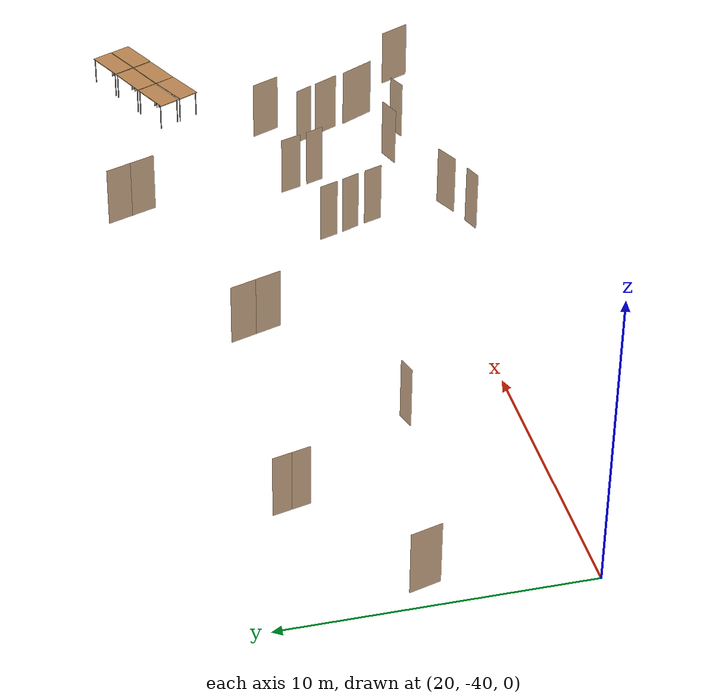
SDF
<sdf version="1.7">
 <world name="world">
  <model name="OpenRobotics/Table_3">
   <static>1</static>
   <link name="link">
    <collision name="surface">
     <pose>0 0 1 0 -0 0</pose>
     <geometry><box><size>1.5 0.8 0.03</size></box></geometry>
     <surface><friction><ode><mu>0.6</mu><mu2>0.6</mu2></ode></friction></surface>
    </collision>
    <visual name="visual1">
     <pose>0 0 1 0 -0 0</pose>
     <geometry><box><size>1.5 0.8 0.03</size></box></geometry>
     <material>
      <script><uri>file://media/materials/scripts/gazebo.material</uri><name>Gazebo/Wood</name></script>
     </material>
    </visual>
    <collision name="front_left_leg_c">
     <pose>0.68 0.38 0.5 0 -0 0</pose>
     <geometry><cylinder><radius>0.02</radius><length>1</length></cylinder></geometry>
    </collision>
    <visual name="front_left_leg">
     <pose>0.68 0.38 0.5 0 -0 0</pose>
     <geometry><cylinder><radius>0.02</radius><length>1</length></cylinder></geometry>
     <material>
      <script><uri>file://media/materials/scripts/gazebo.material</uri><name>Gazebo/Grey</name></script>
     </material>
    </visual>
    <collision name="front_right_leg_c">
     <pose>0.68 -0.38 0.5 0 -0 0</pose>
     <geometry><cylinder><radius>0.02</radius><length>1</length></cylinder></geometry>
    </collision>
    <visual name="front_right_leg">
     <pose>0.68 -0.38 0.5 0 -0 0</pose>
     <geometry><cylinder><radius>0.02</radius><length>1</length></cylinder></geometry>
     <material>
      <script><uri>file://media/materials/scripts/gazebo.material</uri><name>Gazebo/Grey</name></script>
     </material>
    </visual>
    <collision name="back_right_leg_c">
     <pose>-0.68 -0.38 0.5 0 -0 0</pose>
     <geometry><cylinder><radius>0.02</radius><length>1</length></cylinder></geometry>
    </collision>
    <visual name="back_right_leg">
     <pose>-0.68 -0.38 0.5 0 -0 0</pose>
     <geometry><cylinder><radius>0.02</radius><length>1</length></cylinder></geometry>
     <material>
      <script><uri>file://media/materials/scripts/gazebo.material</uri><name>Gazebo/Grey</name></script>
     </material>
    </visual>
    <collision name="back_left_leg_c">
     <pose>-0.68 0.38 0.5 0 -0 0</pose>
     <geometry><cylinder><radius>0.02</radius><length>1</length></cylinder></geometry>
    </collision>
    <visual name="back_left_leg">
     <pose>-0.68 0.38 0.5 0 -0 0</pose>
     <geometry><cylinder><radius>0.02</radius><length>1</length></cylinder></geometry>
     <material>
      <script><uri>file://media/materials/scripts/gazebo.material</uri><name>Gazebo/Grey</name></script>
     </material>
    </visual>
   </link>
   <pose>49.1187 -32.1514 0 0 -0 0.4303</pose>
  </model>
  <model name="OpenRobotics/Table_4">
   <static>1</static>
   <link name="link">
    <collision name="surface">
     <pose>0 0 1 0 -0 0</pose>
     <geometry><box><size>1.5 0.8 0.03</size></box></geometry>
     <surface><friction><ode><mu>0.6</mu><mu2>0.6</mu2></ode></friction></surface>
    </collision>
    <visual name="visual1">
     <pose>0 0 1 0 -0 0</pose>
     <geometry><box><size>1.5 0.8 0.03</size></box></geometry>
     <material>
      <script><uri>file://media/materials/scripts/gazebo.material</uri><name>Gazebo/Wood</name></script>
     </material>
    </visual>
    <collision name="front_left_leg_c">
     <pose>0.68 0.38 0.5 0 -0 0</pose>
     <geometry><cylinder><radius>0.02</radius><length>1</length></cylinder></geometry>
    </collision>
    <visual name="front_left_leg">
     <pose>0.68 0.38 0.5 0 -0 0</pose>
     <geometry><cylinder><radius>0.02</radius><length>1</length></cylinder></geometry>
     <material>
      <script><uri>file://media/materials/scripts/gazebo.material</uri><name>Gazebo/Grey</name></script>
     </material>
    </visual>
    <collision name="front_right_leg_c">
     <pose>0.68 -0.38 0.5 0 -0 0</pose>
     <geometry><cylinder><radius>0.02</radius><length>1</length></cylinder></geometry>
    </collision>
    <visual name="front_right_leg">
     <pose>0.68 -0.38 0.5 0 -0 0</pose>
     <geometry><cylinder><radius>0.02</radius><length>1</length></cylinder></geometry>
     <material>
      <script><uri>file://media/materials/scripts/gazebo.material</uri><name>Gazebo/Grey</name></script>
     </material>
    </visual>
    <collision name="back_right_leg_c">
     <pose>-0.68 -0.38 0.5 0 -0 0</pose>
     <geometry><cylinder><radius>0.02</radius><length>1</length></cylinder></geometry>
    </collision>
    <visual name="back_right_leg">
     <pose>-0.68 -0.38 0.5 0 -0 0</pose>
     <geometry><cylinder><radius>0.02</radius><length>1</length></cylinder></geometry>
     <material>
      <script><uri>file://media/materials/scripts/gazebo.material</uri><name>Gazebo/Grey</name></script>
     </material>
    </visual>
    <collision name="back_left_leg_c">
     <pose>-0.68 0.38 0.5 0 -0 0</pose>
     <geometry><cylinder><radius>0.02</radius><length>1</length></cylinder></geometry>
    </collision>
    <visual name="back_left_leg">
     <pose>-0.68 0.38 0.5 0 -0 0</pose>
     <geometry><cylinder><radius>0.02</radius><length>1</length></cylinder></geometry>
     <material>
      <script><uri>file://media/materials/scripts/gazebo.material</uri><name>Gazebo/Grey</name></script>
     </material>
    </visual>
   </link>
   <pose>50.5168 -31.5278 0 0 -0 0.4167</pose>
  </model>
  <model name="OpenRobotics/Table_5">
   <static>1</static>
   <link name="link">
    <collision name="surface">
     <pose>0 0 1 0 -0 0</pose>
     <geometry><box><size>1.5 0.8 0.03</size></box></geometry>
     <surface><friction><ode><mu>0.6</mu><mu2>0.6</mu2></ode></friction></surface>
    </collision>
    <visual name="visual1">
     <pose>0 0 1 0 -0 0</pose>
     <geometry><box><size>1.5 0.8 0.03</size></box></geometry>
     <material>
      <script><uri>file://media/materials/scripts/gazebo.material</uri><name>Gazebo/Wood</name></script>
     </material>
    </visual>
    <collision name="front_left_leg_c">
     <pose>0.68 0.38 0.5 0 -0 0</pose>
     <geometry><cylinder><radius>0.02</radius><length>1</length></cylinder></geometry>
    </collision>
    <visual name="front_left_leg">
     <pose>0.68 0.38 0.5 0 -0 0</pose>
     <geometry><cylinder><radius>0.02</radius><length>1</length></cylinder></geometry>
     <material>
      <script><uri>file://media/materials/scripts/gazebo.material</uri><name>Gazebo/Grey</name></script>
     </material>
    </visual>
    <collision name="front_right_leg_c">
     <pose>0.68 -0.38 0.5 0 -0 0</pose>
     <geometry><cylinder><radius>0.02</radius><length>1</length></cylinder></geometry>
    </collision>
    <visual name="front_right_leg">
     <pose>0.68 -0.38 0.5 0 -0 0</pose>
     <geometry><cylinder><radius>0.02</radius><length>1</length></cylinder></geometry>
     <material>
      <script><uri>file://media/materials/scripts/gazebo.material</uri><name>Gazebo/Grey</name></script>
     </material>
    </visual>
    <collision name="back_right_leg_c">
     <pose>-0.68 -0.38 0.5 0 -0 0</pose>
     <geometry><cylinder><radius>0.02</radius><length>1</length></cylinder></geometry>
    </collision>
    <visual name="back_right_leg">
     <pose>-0.68 -0.38 0.5 0 -0 0</pose>
     <geometry><cylinder><radius>0.02</radius><length>1</length></cylinder></geometry>
     <material>
      <script><uri>file://media/materials/scripts/gazebo.material</uri><name>Gazebo/Grey</name></script>
     </material>
    </visual>
    <collision name="back_left_leg_c">
     <pose>-0.68 0.38 0.5 0 -0 0</pose>
     <geometry><cylinder><radius>0.02</radius><length>1</length></cylinder></geometry>
    </collision>
    <visual name="back_left_leg">
     <pose>-0.68 0.38 0.5 0 -0 0</pose>
     <geometry><cylinder><radius>0.02</radius><length>1</length></cylinder></geometry>
     <material>
      <script><uri>file://media/materials/scripts/gazebo.material</uri><name>Gazebo/Grey</name></script>
     </material>
    </visual>
   </link>
   <pose>51.9247 -30.8942 0 0 -0 0.4347</pose>
  </model>
  <model name="OpenRobotics/Table_6">
   <static>1</static>
   <link name="link">
    <collision name="surface">
     <pose>0 0 1 0 -0 0</pose>
     <geometry><box><size>1.5 0.8 0.03</size></box></geometry>
     <surface><friction><ode><mu>0.6</mu><mu2>0.6</mu2></ode></friction></surface>
    </collision>
    <visual name="visual1">
     <pose>0 0 1 0 -0 0</pose>
     <geometry><box><size>1.5 0.8 0.03</size></box></geometry>
     <material>
      <script><uri>file://media/materials/scripts/gazebo.material</uri><name>Gazebo/Wood</name></script>
     </material>
    </visual>
    <collision name="front_left_leg_c">
     <pose>0.68 0.38 0.5 0 -0 0</pose>
     <geometry><cylinder><radius>0.02</radius><length>1</length></cylinder></geometry>
    </collision>
    <visual name="front_left_leg">
     <pose>0.68 0.38 0.5 0 -0 0</pose>
     <geometry><cylinder><radius>0.02</radius><length>1</length></cylinder></geometry>
     <material>
      <script><uri>file://media/materials/scripts/gazebo.material</uri><name>Gazebo/Grey</name></script>
     </material>
    </visual>
    <collision name="front_right_leg_c">
     <pose>0.68 -0.38 0.5 0 -0 0</pose>
     <geometry><cylinder><radius>0.02</radius><length>1</length></cylinder></geometry>
    </collision>
    <visual name="front_right_leg">
     <pose>0.68 -0.38 0.5 0 -0 0</pose>
     <geometry><cylinder><radius>0.02</radius><length>1</length></cylinder></geometry>
     <material>
      <script><uri>file://media/materials/scripts/gazebo.material</uri><name>Gazebo/Grey</name></script>
     </material>
    </visual>
    <collision name="back_right_leg_c">
     <pose>-0.68 -0.38 0.5 0 -0 0</pose>
     <geometry><cylinder><radius>0.02</radius><length>1</length></cylinder></geometry>
    </collision>
    <visual name="back_right_leg">
     <pose>-0.68 -0.38 0.5 0 -0 0</pose>
     <geometry><cylinder><radius>0.02</radius><length>1</length></cylinder></geometry>
     <material>
      <script><uri>file://media/materials/scripts/gazebo.material</uri><name>Gazebo/Grey</name></script>
     </material>
    </visual>
    <collision name="back_left_leg_c">
     <pose>-0.68 0.38 0.5 0 -0 0</pose>
     <geometry><cylinder><radius>0.02</radius><length>1</length></cylinder></geometry>
    </collision>
    <visual name="back_left_leg">
     <pose>-0.68 0.38 0.5 0 -0 0</pose>
     <geometry><cylinder><radius>0.02</radius><length>1</length></cylinder></geometry>
     <material>
      <script><uri>file://media/materials/scripts/gazebo.material</uri><name>Gazebo/Grey</name></script>
     </material>
    </visual>
   </link>
   <pose>52.2667 -31.6485 0 0 -0 0.4389</pose>
  </model>
  <model name="OpenRobotics/Table_7">
   <static>1</static>
   <link name="link">
    <collision name="surface">
     <pose>0 0 1 0 -0 0</pose>
     <geometry><box><size>1.5 0.8 0.03</size></box></geometry>
     <surface><friction><ode><mu>0.6</mu><mu2>0.6</mu2></ode></friction></surface>
    </collision>
    <visual name="visual1">
     <pose>0 0 1 0 -0 0</pose>
     <geometry><box><size>1.5 0.8 0.03</size></box></geometry>
     <material>
      <script><uri>file://media/materials/scripts/gazebo.material</uri><name>Gazebo/Wood</name></script>
     </material>
    </visual>
    <collision name="front_left_leg_c">
     <pose>0.68 0.38 0.5 0 -0 0</pose>
     <geometry><cylinder><radius>0.02</radius><length>1</length></cylinder></geometry>
    </collision>
    <visual name="front_left_leg">
     <pose>0.68 0.38 0.5 0 -0 0</pose>
     <geometry><cylinder><radius>0.02</radius><length>1</length></cylinder></geometry>
     <material>
      <script><uri>file://media/materials/scripts/gazebo.material</uri><name>Gazebo/Grey</name></script>
     </material>
    </visual>
    <collision name="front_right_leg_c">
     <pose>0.68 -0.38 0.5 0 -0 0</pose>
     <geometry><cylinder><radius>0.02</radius><length>1</length></cylinder></geometry>
    </collision>
    <visual name="front_right_leg">
     <pose>0.68 -0.38 0.5 0 -0 0</pose>
     <geometry><cylinder><radius>0.02</radius><length>1</length></cylinder></geometry>
     <material>
      <script><uri>file://media/materials/scripts/gazebo.material</uri><name>Gazebo/Grey</name></script>
     </material>
    </visual>
    <collision name="back_right_leg_c">
     <pose>-0.68 -0.38 0.5 0 -0 0</pose>
     <geometry><cylinder><radius>0.02</radius><length>1</length></cylinder></geometry>
    </collision>
    <visual name="back_right_leg">
     <pose>-0.68 -0.38 0.5 0 -0 0</pose>
     <geometry><cylinder><radius>0.02</radius><length>1</length></cylinder></geometry>
     <material>
      <script><uri>file://media/materials/scripts/gazebo.material</uri><name>Gazebo/Grey</name></script>
     </material>
    </visual>
    <collision name="back_left_leg_c">
     <pose>-0.68 0.38 0.5 0 -0 0</pose>
     <geometry><cylinder><radius>0.02</radius><length>1</length></cylinder></geometry>
    </collision>
    <visual name="back_left_leg">
     <pose>-0.68 0.38 0.5 0 -0 0</pose>
     <geometry><cylinder><radius>0.02</radius><length>1</length></cylinder></geometry>
     <material>
      <script><uri>file://media/materials/scripts/gazebo.material</uri><name>Gazebo/Grey</name></script>
     </material>
    </visual>
   </link>
   <pose>50.8587 -32.2821 0 0 -0 0.4288</pose>
  </model>
  <model name="OpenRobotics/Table_8">
   <static>1</static>
   <link name="link">
    <collision name="surface">
     <pose>0 0 1 0 -0 0</pose>
     <geometry><box><size>1.5 0.8 0.03</size></box></geometry>
     <surface><friction><ode><mu>0.6</mu><mu2>0.6</mu2></ode></friction></surface>
    </collision>
    <visual name="visual1">
     <pose>0 0 1 0 -0 0</pose>
     <geometry><box><size>1.5 0.8 0.03</size></box></geometry>
     <material>
      <script><uri>file://media/materials/scripts/gazebo.material</uri><name>Gazebo/Wood</name></script>
     </material>
    </visual>
    <collision name="front_left_leg_c">
     <pose>0.68 0.38 0.5 0 -0 0</pose>
     <geometry><cylinder><radius>0.02</radius><length>1</length></cylinder></geometry>
    </collision>
    <visual name="front_left_leg">
     <pose>0.68 0.38 0.5 0 -0 0</pose>
     <geometry><cylinder><radius>0.02</radius><length>1</length></cylinder></geometry>
     <material>
      <script><uri>file://media/materials/scripts/gazebo.material</uri><name>Gazebo/Grey</name></script>
     </material>
    </visual>
    <collision name="front_right_leg_c">
     <pose>0.68 -0.38 0.5 0 -0 0</pose>
     <geometry><cylinder><radius>0.02</radius><length>1</length></cylinder></geometry>
    </collision>
    <visual name="front_right_leg">
     <pose>0.68 -0.38 0.5 0 -0 0</pose>
     <geometry><cylinder><radius>0.02</radius><length>1</length></cylinder></geometry>
     <material>
      <script><uri>file://media/materials/scripts/gazebo.material</uri><name>Gazebo/Grey</name></script>
     </material>
    </visual>
    <collision name="back_right_leg_c">
     <pose>-0.68 -0.38 0.5 0 -0 0</pose>
     <geometry><cylinder><radius>0.02</radius><length>1</length></cylinder></geometry>
    </collision>
    <visual name="back_right_leg">
     <pose>-0.68 -0.38 0.5 0 -0 0</pose>
     <geometry><cylinder><radius>0.02</radius><length>1</length></cylinder></geometry>
     <material>
      <script><uri>file://media/materials/scripts/gazebo.material</uri><name>Gazebo/Grey</name></script>
     </material>
    </visual>
    <collision name="back_left_leg_c">
     <pose>-0.68 0.38 0.5 0 -0 0</pose>
     <geometry><cylinder><radius>0.02</radius><length>1</length></cylinder></geometry>
    </collision>
    <visual name="back_left_leg">
     <pose>-0.68 0.38 0.5 0 -0 0</pose>
     <geometry><cylinder><radius>0.02</radius><length>1</length></cylinder></geometry>
     <material>
      <script><uri>file://media/materials/scripts/gazebo.material</uri><name>Gazebo/Grey</name></script>
     </material>
    </visual>
   </link>
   <pose>49.4808 -32.9359 0 0 -0 0.4547</pose>
  </model>
  <model name="D1">
   <pose>46.734 -38.1165 0 0 -0 -1.09898</pose>
   <link name="right">
    <pose>0 0 1.11 0 -0 0</pose>
    <visual name="right_visual">
     <geometry><box><size>0.995473 0.03 2.2</size></box></geometry>
     <material><ambient>0.5 0.25 0 0.6</ambient><diffuse>0.5 0.25 0 0.6</diffuse></material>
    </visual>
    <collision name="right_collision">
     <geometry><box><size>0.995473 0.03 2.2</size></box></geometry>
     <surface><contact><collide_bitmask>2</collide_bitmask></contact></surface>
    </collision>
    <inertial>
     <mass>50</mass>
     <inertia><ixx>20.1704</ixx><iyy>24.2957</iyy><izz>4.13277</izz><ixy>0</ixy><ixz>0</ixz><iyz>0</iyz></inertia>
    </inertial>
   </link>
   <joint name="right_joint" type="revolute">
    <parent>world</parent>
    <child>right</child>
    <axis>
     <xyz>0 0 1</xyz>
     <limit><lower>0</lower><upper>1.57</upper></limit>
     <dynamics><spring_reference>0</spring_reference><spring_stiffness>0</spring_stiffness></dynamics>
    </axis>
    <pose>0.502736 0 0 0 -0 0</pose>
   </joint>
   <plugin name="door_D1" filename="libdoor.so">
    <v_max_door>0.5</v_max_door>
    <a_max_door>0.3</a_max_door>
    <a_nom_door>0.15</a_nom_door>
    <dx_min_door>0.01</dx_min_door>
    <f_max_door>500.0</f_max_door>
    <door name="D1" type="SwingDoor" left_joint_name="empty_joint" right_joint_name="right_joint"/>
   </plugin>
  </model>
  <model name="D2">
   <pose>40.5795 -41.0884 0 0 0 -2.71335</pose>
   <link name="right">
    <pose>0 0 1.11 0 -0 0</pose>
    <visual name="right_visual">
     <geometry><box><size>0.922305 0.03 2.2</size></box></geometry>
     <material><ambient>0.5 0.25 0 0.6</ambient><diffuse>0.5 0.25 0 0.6</diffuse></material>
    </visual>
    <collision name="right_collision">
     <geometry><box><size>0.922305 0.03 2.2</size></box></geometry>
     <surface><contact><collide_bitmask>2</collide_bitmask></contact></surface>
    </collision>
    <inertial>
     <mass>50</mass>
     <inertia><ixx>20.1704</ixx><iyy>23.711</iyy><izz>3.54811</izz><ixy>0</ixy><ixz>0</ixz><iyz>0</iyz></inertia>
    </inertial>
   </link>
   <joint name="right_joint" type="revolute">
    <parent>world</parent>
    <child>right</child>
    <axis>
     <xyz>0 0 1</xyz>
     <limit><lower>0</lower><upper>1.57</upper></limit>
     <dynamics><spring_reference>0</spring_reference><spring_stiffness>0</spring_stiffness></dynamics>
    </axis>
    <pose>0.466153 0 0 0 -0 0</pose>
   </joint>
   <plugin name="door_D2" filename="libdoor.so">
    <v_max_door>0.5</v_max_door>
    <a_max_door>0.3</a_max_door>
    <a_nom_door>0.15</a_nom_door>
    <dx_min_door>0.01</dx_min_door>
    <f_max_door>500.0</f_max_door>
    <door name="D2" type="SwingDoor" left_joint_name="empty_joint" right_joint_name="right_joint"/>
   </plugin>
  </model>
  <model name="D3">
   <pose>44.2806 -39.9356 -0 0 0 -2.80852</pose>
   <link name="right">
    <pose>0 0 1.11 0 -0 0</pose>
    <visual name="right_visual">
     <geometry><box><size>0.838853 0.03 2.2</size></box></geometry>
     <material><ambient>0.5 0.25 0 0.6</ambient><diffuse>0.5 0.25 0 0.6</diffuse></material>
    </visual>
    <collision name="right_collision">
     <geometry><box><size>0.838853 0.03 2.2</size></box></geometry>
     <surface><contact><collide_bitmask>2</collide_bitmask></contact></surface>
    </collision>
    <inertial>
     <mass>50</mass>
     <inertia><ixx>20.1704</ixx><iyy>23.0986</iyy><izz>2.93572</izz><ixy>0</ixy><ixz>0</ixz><iyz>0</iyz></inertia>
    </inertial>
   </link>
   <joint name="right_joint" type="revolute">
    <parent>world</parent>
    <child>right</child>
    <axis>
     <xyz>0 0 1</xyz>
     <limit><lower>0</lower><upper>1.57</upper></limit>
     <dynamics><spring_reference>0</spring_reference><spring_stiffness>0</spring_stiffness></dynamics>
    </axis>
    <pose>0.424426 0 0 0 -0 0</pose>
   </joint>
   <plugin name="door_D3" filename="libdoor.so">
    <v_max_door>0.5</v_max_door>
    <a_max_door>0.3</a_max_door>
    <a_nom_door>0.15</a_nom_door>
    <dx_min_door>0.01</dx_min_door>
    <f_max_door>500.0</f_max_door>
    <door name="D3" type="SwingDoor" left_joint_name="empty_joint" right_joint_name="right_joint"/>
   </plugin>
  </model>
  <model name="D4">
   <pose>46.2677 -37.1758 -0 0 0 -1.0969</pose>
   <link name="right">
    <pose>0 0 1.11 0 -0 0</pose>
    <visual name="right_visual">
     <geometry><box><size>0.672919 0.03 2.2</size></box></geometry>
     <material><ambient>0.5 0.25 0 0.6</ambient><diffuse>0.5 0.25 0 0.6</diffuse></material>
    </visual>
    <collision name="right_collision">
     <geometry><box><size>0.672919 0.03 2.2</size></box></geometry>
     <surface><contact><collide_bitmask>2</collide_bitmask></contact></surface>
    </collision>
    <inertial>
     <mass>50</mass>
     <inertia><ixx>20.1704</ixx><iyy>22.0534</iyy><izz>1.8905</izz><ixy>0</ixy><ixz>0</ixz><iyz>0</iyz></inertia>
    </inertial>
   </link>
   <joint name="right_joint" type="revolute">
    <parent>world</parent>
    <child>right</child>
    <axis>
     <xyz>0 0 1</xyz>
     <limit><lower>0</lower><upper>1.57</upper></limit>
     <dynamics><spring_reference>0</spring_reference><spring_stiffness>0</spring_stiffness></dynamics>
    </axis>
    <pose>0.34146 0 0 0 -0 0</pose>
   </joint>
   <plugin name="door_D4" filename="libdoor.so">
    <v_max_door>0.5</v_max_door>
    <a_max_door>0.3</a_max_door>
    <a_nom_door>0.15</a_nom_door>
    <dx_min_door>0.01</dx_min_door>
    <f_max_door>500.0</f_max_door>
    <door name="D4" type="SwingDoor" left_joint_name="empty_joint" right_joint_name="right_joint"/>
   </plugin>
  </model>
  <model name="D5">
   <pose>47.1461 -35.8918 0 0 -0 -1.15391</pose>
   <link name="right">
    <pose>0 0 1.11 0 -0 0</pose>
    <visual name="right_visual">
     <geometry><box><size>1.10714 0.03 2.2</size></box></geometry>
     <material><ambient>0.5 0.25 0 0.6</ambient><diffuse>0.5 0.25 0 0.6</diffuse></material>
    </visual>
    <collision name="right_collision">
     <geometry><box><size>1.10714 0.03 2.2</size></box></geometry>
     <surface><contact><collide_bitmask>2</collide_bitmask></contact></surface>
    </collision>
    <inertial>
     <mass>50</mass>
     <inertia><ixx>20.1704</ixx><iyy>25.274</iyy><izz>5.11105</izz><ixy>0</ixy><ixz>0</ixz><iyz>0</iyz></inertia>
    </inertial>
   </link>
   <joint name="right_joint" type="revolute">
    <parent>world</parent>
    <child>right</child>
    <axis>
     <xyz>0 0 -1</xyz>
     <limit><lower>0</lower><upper>1.57</upper></limit>
     <dynamics><spring_reference>0</spring_reference><spring_stiffness>0</spring_stiffness></dynamics>
    </axis>
    <pose>0.558568 0 0 0 -0 0</pose>
   </joint>
   <plugin name="door_D5" filename="libdoor.so">
    <v_max_door>0.5</v_max_door>
    <a_max_door>0.3</a_max_door>
    <a_nom_door>0.15</a_nom_door>
    <dx_min_door>0.01</dx_min_door>
    <f_max_door>500.0</f_max_door>
    <door name="D5" type="SwingDoor" left_joint_name="empty_joint" right_joint_name="right_joint"/>
   </plugin>
  </model>
  <model name="D6">
   <pose>49.9364 -41.6614 -0 0 -0 -1.13197</pose>
   <link name="right">
    <pose>0 0 1.11 0 -0 0</pose>
    <visual name="right_visual">
     <geometry><box><size>1.18487 0.03 2.2</size></box></geometry>
     <material><ambient>0.5 0.25 0 0.6</ambient><diffuse>0.5 0.25 0 0.6</diffuse></material>
    </visual>
    <collision name="right_collision">
     <geometry><box><size>1.18487 0.03 2.2</size></box></geometry>
     <surface><contact><collide_bitmask>2</collide_bitmask></contact></surface>
    </collision>
    <inertial>
     <mass>50</mass>
     <inertia><ixx>20.1704</ixx><iyy>26.0163</iyy><izz>5.85339</izz><ixy>0</ixy><ixz>0</ixz><iyz>0</iyz></inertia>
    </inertial>
   </link>
   <joint name="right_joint" type="revolute">
    <parent>world</parent>
    <child>right</child>
    <axis>
     <xyz>0 0 -1</xyz>
     <limit><lower>0</lower><upper>1.57</upper></limit>
     <dynamics><spring_reference>0</spring_reference><spring_stiffness>0</spring_stiffness></dynamics>
    </axis>
    <pose>0.597435 0 0 0 -0 0</pose>
   </joint>
   <plugin name="door_D6" filename="libdoor.so">
    <v_max_door>0.5</v_max_door>
    <a_max_door>0.3</a_max_door>
    <a_nom_door>0.15</a_nom_door>
    <dx_min_door>0.01</dx_min_door>
    <f_max_door>500.0</f_max_door>
    <door name="D6" type="SwingDoor" left_joint_name="empty_joint" right_joint_name="right_joint"/>
   </plugin>
  </model>
  <model name="D10">
   <pose>47.3834 -39.5003 -0 -0 -0 -1.07964</pose>
   <link name="right">
    <pose>0 0 1.11 0 -0 0</pose>
    <visual name="right_visual">
     <geometry><box><size>1.38727 0.03 2.2</size></box></geometry>
     <material><ambient>0.5 0.25 0 0.6</ambient><diffuse>0.5 0.25 0 0.6</diffuse></material>
    </visual>
    <collision name="right_collision">
     <geometry><box><size>1.38727 0.03 2.2</size></box></geometry>
     <surface><contact><collide_bitmask>2</collide_bitmask></contact></surface>
    </collision>
    <inertial>
     <mass>50</mass>
     <inertia><ixx>20.1704</ixx><iyy>28.1855</iyy><izz>8.02261</izz><ixy>0</ixy><ixz>0</ixz><iyz>0</iyz></inertia>
    </inertial>
   </link>
   <joint name="right_joint" type="revolute">
    <parent>world</parent>
    <child>right</child>
    <axis>
     <xyz>0 0 1</xyz>
     <limit><lower>0</lower><upper>1.57</upper></limit>
     <dynamics><spring_reference>0</spring_reference><spring_stiffness>0</spring_stiffness></dynamics>
    </axis>
    <pose>0.698637 0 0 0 -0 0</pose>
   </joint>
   <plugin name="door_D10" filename="libdoor.so">
    <v_max_door>0.5</v_max_door>
    <a_max_door>0.3</a_max_door>
    <a_nom_door>0.15</a_nom_door>
    <dx_min_door>0.01</dx_min_door>
    <f_max_door>500.0</f_max_door>
    <door name="D10" type="SwingDoor" left_joint_name="empty_joint" right_joint_name="right_joint"/>
   </plugin>
  </model>
  <model name="D11">
   <pose>45.9919 -40.6742 0 0 -0 0.393065</pose>
   <link name="right">
    <pose>0 0 1.11 0 -0 0</pose>
    <visual name="right_visual">
     <geometry><box><size>0.692377 0.03 2.2</size></box></geometry>
     <material><ambient>0.5 0.25 0 0.6</ambient><diffuse>0.5 0.25 0 0.6</diffuse></material>
    </visual>
    <collision name="right_collision">
     <geometry><box><size>0.692377 0.03 2.2</size></box></geometry>
     <surface><contact><collide_bitmask>2</collide_bitmask></contact></surface>
    </collision>
    <inertial>
     <mass>50</mass>
     <inertia><ixx>20.1704</ixx><iyy>22.1641</iyy><izz>2.00119</izz><ixy>0</ixy><ixz>0</ixz><iyz>0</iyz></inertia>
    </inertial>
   </link>
   <joint name="right_joint" type="revolute">
    <parent>world</parent>
    <child>right</child>
    <axis>
     <xyz>0 0 1</xyz>
     <limit><lower>0</lower><upper>1.57</upper></limit>
     <dynamics><spring_reference>0</spring_reference><spring_stiffness>0</spring_stiffness></dynamics>
    </axis>
    <pose>0.351189 0 0 0 -0 0</pose>
   </joint>
   <plugin name="door_D11" filename="libdoor.so">
    <v_max_door>0.5</v_max_door>
    <a_max_door>0.3</a_max_door>
    <a_nom_door>0.15</a_nom_door>
    <dx_min_door>0.01</dx_min_door>
    <f_max_door>500.0</f_max_door>
    <door name="D11" type="SwingDoor" left_joint_name="empty_joint" right_joint_name="right_joint"/>
   </plugin>
  </model>
  <model name="D20">
   <pose>40.2781 -38.2815 0 0 -0 -1.22522</pose>
   <link name="right">
    <pose>0 0 1.11 0 -0 0</pose>
    <visual name="right_visual">
     <geometry><box><size>0.695847 0.03 2.2</size></box></geometry>
     <material><ambient>0.5 0.25 0 0.6</ambient><diffuse>0.5 0.25 0 0.6</diffuse></material>
    </visual>
    <collision name="right_collision">
     <geometry><box><size>0.695847 0.03 2.2</size></box></geometry>
     <surface><contact><collide_bitmask>2</collide_bitmask></contact></surface>
    </collision>
    <inertial>
     <mass>50</mass>
     <inertia><ixx>20.1704</ixx><iyy>22.1842</iyy><izz>2.02126</izz><ixy>0</ixy><ixz>0</ixz><iyz>0</iyz></inertia>
    </inertial>
   </link>
   <joint name="right_joint" type="revolute">
    <parent>world</parent>
    <child>right</child>
    <axis>
     <xyz>0 0 1</xyz>
     <limit><lower>0</lower><upper>1.57</upper></limit>
     <dynamics><spring_reference>0</spring_reference><spring_stiffness>0</spring_stiffness></dynamics>
    </axis>
    <pose>0.352924 0 0 0 -0 0</pose>
   </joint>
   <plugin name="door_D20" filename="libdoor.so">
    <v_max_door>0.5</v_max_door>
    <a_max_door>0.3</a_max_door>
    <a_nom_door>0.15</a_nom_door>
    <dx_min_door>0.01</dx_min_door>
    <f_max_door>500.0</f_max_door>
    <door name="D20" type="SwingDoor" left_joint_name="empty_joint" right_joint_name="right_joint"/>
   </plugin>
  </model>
  <model name="D21">
   <pose>39.9399 -37.3749 0 0 0 -1.17372</pose>
   <link name="right">
    <pose>0 0 1.11 0 -0 0</pose>
    <visual name="right_visual">
     <geometry><box><size>0.679785 0.03 2.2</size></box></geometry>
     <material><ambient>0.5 0.25 0 0.6</ambient><diffuse>0.5 0.25 0 0.6</diffuse></material>
    </visual>
    <collision name="right_collision">
     <geometry><box><size>0.679785 0.03 2.2</size></box></geometry>
     <surface><contact><collide_bitmask>2</collide_bitmask></contact></surface>
    </collision>
    <inertial>
     <mass>50</mass>
     <inertia><ixx>20.1704</ixx><iyy>22.0921</iyy><izz>1.9292</izz><ixy>0</ixy><ixz>0</ixz><iyz>0</iyz></inertia>
    </inertial>
   </link>
   <joint name="right_joint" type="revolute">
    <parent>world</parent>
    <child>right</child>
    <axis>
     <xyz>0 0 1</xyz>
     <limit><lower>0</lower><upper>1.57</upper></limit>
     <dynamics><spring_reference>0</spring_reference><spring_stiffness>0</spring_stiffness></dynamics>
    </axis>
    <pose>0.344893 0 0 0 -0 0</pose>
   </joint>
   <plugin name="door_D21" filename="libdoor.so">
    <v_max_door>0.5</v_max_door>
    <a_max_door>0.3</a_max_door>
    <a_nom_door>0.15</a_nom_door>
    <dx_min_door>0.01</dx_min_door>
    <f_max_door>500.0</f_max_door>
    <door name="D21" type="SwingDoor" left_joint_name="empty_joint" right_joint_name="right_joint"/>
   </plugin>
  </model>
  <model name="D22">
   <pose>39.6095 -36.5068 0 0 -0 -1.22329</pose>
   <link name="right">
    <pose>0 0 1.11 0 -0 0</pose>
    <visual name="right_visual">
     <geometry><box><size>0.697065 0.03 2.2</size></box></geometry>
     <material><ambient>0.5 0.25 0 0.6</ambient><diffuse>0.5 0.25 0 0.6</diffuse></material>
    </visual>
    <collision name="right_collision">
     <geometry><box><size>0.697065 0.03 2.2</size></box></geometry>
     <surface><contact><collide_bitmask>2</collide_bitmask></contact></surface>
    </collision>
    <inertial>
     <mass>50</mass>
     <inertia><ixx>20.1704</ixx><iyy>22.1912</iyy><izz>2.02833</izz><ixy>0</ixy><ixz>0</ixz><iyz>0</iyz></inertia>
    </inertial>
   </link>
   <joint name="right_joint" type="revolute">
    <parent>world</parent>
    <child>right</child>
    <axis>
     <xyz>0 0 1</xyz>
     <limit><lower>0</lower><upper>1.57</upper></limit>
     <dynamics><spring_reference>0</spring_reference><spring_stiffness>0</spring_stiffness></dynamics>
    </axis>
    <pose>0.353532 0 0 0 -0 0</pose>
   </joint>
   <plugin name="door_D22" filename="libdoor.so">
    <v_max_door>0.5</v_max_door>
    <a_max_door>0.3</a_max_door>
    <a_nom_door>0.15</a_nom_door>
    <dx_min_door>0.01</dx_min_door>
    <f_max_door>500.0</f_max_door>
    <door name="D22" type="SwingDoor" left_joint_name="empty_joint" right_joint_name="right_joint"/>
   </plugin>
  </model>
  <model name="D23">
   <pose>43.3133 -36.8664 0 0 -0 -1.20842</pose>
   <link name="right">
    <pose>0 0 1.11 0 -0 0</pose>
    <visual name="right_visual">
     <geometry><box><size>0.675024 0.03 2.2</size></box></geometry>
     <material><ambient>0.5 0.25 0 0.6</ambient><diffuse>0.5 0.25 0 0.6</diffuse></material>
    </visual>
    <collision name="right_collision">
     <geometry><box><size>0.675024 0.03 2.2</size></box></geometry>
     <surface><contact><collide_bitmask>2</collide_bitmask></contact></surface>
    </collision>
    <inertial>
     <mass>50</mass>
     <inertia><ixx>20.1704</ixx><iyy>22.0652</iyy><izz>1.90232</izz><ixy>0</ixy><ixz>0</ixz><iyz>0</iyz></inertia>
    </inertial>
   </link>
   <joint name="right_joint" type="revolute">
    <parent>world</parent>
    <child>right</child>
    <axis>
     <xyz>0 0 1</xyz>
     <limit><lower>0</lower><upper>1.57</upper></limit>
     <dynamics><spring_reference>0</spring_reference><spring_stiffness>0</spring_stiffness></dynamics>
    </axis>
    <pose>0.342512 0 0 0 -0 0</pose>
   </joint>
   <plugin name="door_D23" filename="libdoor.so">
    <v_max_door>0.5</v_max_door>
    <a_max_door>0.3</a_max_door>
    <a_nom_door>0.15</a_nom_door>
    <dx_min_door>0.01</dx_min_door>
    <f_max_door>500.0</f_max_door>
    <door name="D23" type="SwingDoor" left_joint_name="empty_joint" right_joint_name="right_joint"/>
   </plugin>
  </model>
  <model name="D24">
   <pose>42.9771 -35.9117 0 0 0 -1.2416</pose>
   <link name="right">
    <pose>0 0 1.11 0 -0 0</pose>
    <visual name="right_visual">
     <geometry><box><size>0.780097 0.03 2.2</size></box></geometry>
     <material><ambient>0.5 0.25 0 0.6</ambient><diffuse>0.5 0.25 0 0.6</diffuse></material>
    </visual>
    <collision name="right_collision">
     <geometry><box><size>0.780097 0.03 2.2</size></box></geometry>
     <surface><contact><collide_bitmask>2</collide_bitmask></contact></surface>
    </collision>
    <inertial>
     <mass>50</mass>
     <inertia><ixx>20.1704</ixx><iyy>22.7023</iyy><izz>2.53938</izz><ixy>0</ixy><ixz>0</ixz><iyz>0</iyz></inertia>
    </inertial>
   </link>
   <joint name="right_joint" type="revolute">
    <parent>world</parent>
    <child>right</child>
    <axis>
     <xyz>0 0 1</xyz>
     <limit><lower>0</lower><upper>1.57</upper></limit>
     <dynamics><spring_reference>0</spring_reference><spring_stiffness>0</spring_stiffness></dynamics>
    </axis>
    <pose>0.395048 0 0 0 -0 0</pose>
   </joint>
   <plugin name="door_D24" filename="libdoor.so">
    <v_max_door>0.5</v_max_door>
    <a_max_door>0.3</a_max_door>
    <a_nom_door>0.15</a_nom_door>
    <dx_min_door>0.01</dx_min_door>
    <f_max_door>500.0</f_max_door>
    <door name="D24" type="SwingDoor" left_joint_name="empty_joint" right_joint_name="right_joint"/>
   </plugin>
  </model>
  <model name="D41">
   <pose>20.8549 -34.8204 0 0 0 -1.29248</pose>
   <link name="right">
    <pose>0 0 1.11 0 -0 0</pose>
    <visual name="right_visual">
     <geometry><box><size>1.06495 0.03 2.2</size></box></geometry>
     <material><ambient>0.5 0.25 0 0.6</ambient><diffuse>0.5 0.25 0 0.6</diffuse></material>
    </visual>
    <collision name="right_collision">
     <geometry><box><size>1.06495 0.03 2.2</size></box></geometry>
     <surface><contact><collide_bitmask>2</collide_bitmask></contact></surface>
    </collision>
    <inertial>
     <mass>50</mass>
     <inertia><ixx>20.1704</ixx><iyy>24.8922</iyy><izz>4.72928</izz><ixy>0</ixy><ixz>0</ixz><iyz>0</iyz></inertia>
    </inertial>
   </link>
   <joint name="right_joint" type="revolute">
    <parent>world</parent>
    <child>right</child>
    <axis>
     <xyz>0 0 -1</xyz>
     <limit><lower>0</lower><upper>1.57</upper></limit>
     <dynamics><spring_reference>0</spring_reference><spring_stiffness>0</spring_stiffness></dynamics>
    </axis>
    <pose>0.537477 0 0 0 -0 0</pose>
   </joint>
   <plugin name="door_D41" filename="libdoor.so">
    <v_max_door>0.5</v_max_door>
    <a_max_door>0.3</a_max_door>
    <a_nom_door>0.15</a_nom_door>
    <dx_min_door>0.01</dx_min_door>
    <f_max_door>500.0</f_max_door>
    <door name="D41" type="SwingDoor" left_joint_name="empty_joint" right_joint_name="right_joint"/>
   </plugin>
  </model>
  <model name="D42">
   <pose>28.6688 -36.3474 0 0 -0 -2.85205</pose>
   <link name="right">
    <pose>0 0 1.11 0 -0 0</pose>
    <visual name="right_visual">
     <geometry><box><size>0.625709 0.03 2.2</size></box></geometry>
     <material><ambient>0.5 0.25 0 0.6</ambient><diffuse>0.5 0.25 0 0.6</diffuse></material>
    </visual>
    <collision name="right_collision">
     <geometry><box><size>0.625709 0.03 2.2</size></box></geometry>
     <surface><contact><collide_bitmask>2</collide_bitmask></contact></surface>
    </collision>
    <inertial>
     <mass>50</mass>
     <inertia><ixx>20.1704</ixx><iyy>21.798</iyy><izz>1.63505</izz><ixy>0</ixy><ixz>0</ixz><iyz>0</iyz></inertia>
    </inertial>
   </link>
   <joint name="right_joint" type="revolute">
    <parent>world</parent>
    <child>right</child>
    <axis>
     <xyz>0 0 1</xyz>
     <limit><lower>0</lower><upper>1.57</upper></limit>
     <dynamics><spring_reference>0</spring_reference><spring_stiffness>0</spring_stiffness></dynamics>
    </axis>
    <pose>0.317855 0 0 0 -0 0</pose>
   </joint>
   <plugin name="door_D42" filename="libdoor.so">
    <v_max_door>0.5</v_max_door>
    <a_max_door>0.3</a_max_door>
    <a_nom_door>0.15</a_nom_door>
    <dx_min_door>0.01</dx_min_door>
    <f_max_door>500.0</f_max_door>
    <door name="D42" type="SwingDoor" left_joint_name="empty_joint" right_joint_name="right_joint"/>
   </plugin>
  </model>
  <model name="D65">
   <pose>39.2163 -41.6357 0 0 0 -2.79951</pose>
   <link name="right">
    <pose>0 0 1.11 0 -0 0</pose>
    <visual name="right_visual">
     <geometry><box><size>0.647671 0.03 2.2</size></box></geometry>
     <material><ambient>0.5 0.25 0 0.6</ambient><diffuse>0.5 0.25 0 0.6</diffuse></material>
    </visual>
    <collision name="right_collision">
     <geometry><box><size>0.647671 0.03 2.2</size></box></geometry>
     <surface><contact><collide_bitmask>2</collide_bitmask></contact></surface>
    </collision>
    <inertial>
     <mass>50</mass>
     <inertia><ixx>20.1704</ixx><iyy>21.9145</iyy><izz>1.75158</izz><ixy>0</ixy><ixz>0</ixz><iyz>0</iyz></inertia>
    </inertial>
   </link>
   <joint name="right_joint" type="revolute">
    <parent>world</parent>
    <child>right</child>
    <axis>
     <xyz>0 0 1</xyz>
     <limit><lower>0</lower><upper>1.57</upper></limit>
     <dynamics><spring_reference>0</spring_reference><spring_stiffness>0</spring_stiffness></dynamics>
    </axis>
    <pose>0.328836 0 0 0 -0 0</pose>
   </joint>
   <plugin name="door_D65" filename="libdoor.so">
    <v_max_door>0.5</v_max_door>
    <a_max_door>0.3</a_max_door>
    <a_nom_door>0.15</a_nom_door>
    <dx_min_door>0.01</dx_min_door>
    <f_max_door>500.0</f_max_door>
    <door name="D65" type="SwingDoor" left_joint_name="empty_joint" right_joint_name="right_joint"/>
   </plugin>
  </model>
  <model name="DH2">
   <pose>34.4428 -32.7311 0 0 -0 1.89236</pose>
   <link name="right">
    <pose>0.478874 0 1.11 0 -0 0</pose>
    <visual name="right_visual">
     <geometry><box><size>0.947748 0.03 2.2</size></box></geometry>
     <material><ambient>0.5 0.25 0 0.6</ambient><diffuse>0.5 0.25 0 0.6</diffuse></material>
    </visual>
    <collision name="right_collision">
     <geometry><box><size>0.947748 0.03 2.2</size></box></geometry>
     <surface><contact><collide_bitmask>2</collide_bitmask></contact></surface>
    </collision>
    <inertial>
     <mass>50</mass>
     <inertia><ixx>20.1704</ixx><iyy>23.9093</iyy><izz>3.74636</izz><ixy>0</ixy><ixz>0</ixz><iyz>0</iyz></inertia>
    </inertial>
   </link>
   <joint name="right_joint" type="revolute">
    <parent>world</parent>
    <child>right</child>
    <axis>
     <xyz>0 0 -1</xyz>
     <limit><lower>0</lower><upper>1.57</upper></limit>
     <dynamics><spring_reference>0</spring_reference><spring_stiffness>0</spring_stiffness></dynamics>
    </axis>
    <pose>0.478874 0 0 0 -0 0</pose>
   </joint>
   <link name="left">
    <pose>-0.478874 0 1.11 0 -0 0</pose>
    <visual name="left_visual">
     <geometry><box><size>0.947748 0.03 2.2</size></box></geometry>
     <material><ambient>0.5 0.25 0 0.6</ambient><diffuse>0.5 0.25 0 0.6</diffuse></material>
    </visual>
    <collision name="left_collision">
     <geometry><box><size>0.947748 0.03 2.2</size></box></geometry>
     <surface><contact><collide_bitmask>2</collide_bitmask></contact></surface>
    </collision>
    <inertial>
     <mass>50</mass>
     <inertia><ixx>20.1704</ixx><iyy>23.9093</iyy><izz>3.74636</izz><ixy>0</ixy><ixz>0</ixz><iyz>0</iyz></inertia>
    </inertial>
   </link>
   <joint name="left_joint" type="revolute">
    <parent>world</parent>
    <child>left</child>
    <axis>
     <xyz>0 0 -1</xyz>
     <limit><lower>-1.57</lower><upper>0</upper></limit>
     <dynamics><spring_reference>0</spring_reference><spring_stiffness>0</spring_stiffness></dynamics>
    </axis>
    <pose>-0.478874 0 0 0 -0 0</pose>
   </joint>
   <plugin name="door_DH2" filename="libdoor.so">
    <v_max_door>0.5</v_max_door>
    <a_max_door>0.3</a_max_door>
    <a_nom_door>0.15</a_nom_door>
    <dx_min_door>0.01</dx_min_door>
    <f_max_door>500.0</f_max_door>
    <door name="DH2" type="DoubleSwingDoor" left_joint_name="left_joint" right_joint_name="right_joint"/>
   </plugin>
  </model>
  <model name="DH3">
   <pose>42.5963 -29.9587 0 0 0 -1.21422</pose>
   <link name="right">
    <pose>0.481649 0 1.11 0 -0 0</pose>
    <visual name="right_visual">
     <geometry><box><size>0.953298 0.03 2.2</size></box></geometry>
     <material><ambient>0.5 0.25 0 0.6</ambient><diffuse>0.5 0.25 0 0.6</diffuse></material>
    </visual>
    <collision name="right_collision">
     <geometry><box><size>0.953298 0.03 2.2</size></box></geometry>
     <surface><contact><collide_bitmask>2</collide_bitmask></contact></surface>
    </collision>
    <inertial>
     <mass>50</mass>
     <inertia><ixx>20.1704</ixx><iyy>23.9532</iyy><izz>3.79032</izz><ixy>0</ixy><ixz>0</ixz><iyz>0</iyz></inertia>
    </inertial>
   </link>
   <joint name="right_joint" type="revolute">
    <parent>world</parent>
    <child>right</child>
    <axis>
     <xyz>0 0 -1</xyz>
     <limit><lower>0</lower><upper>1.57</upper></limit>
     <dynamics><spring_reference>0</spring_reference><spring_stiffness>0</spring_stiffness></dynamics>
    </axis>
    <pose>0.481649 0 0 0 -0 0</pose>
   </joint>
   <link name="left">
    <pose>-0.481649 0 1.11 0 -0 0</pose>
    <visual name="left_visual">
     <geometry><box><size>0.953298 0.03 2.2</size></box></geometry>
     <material><ambient>0.5 0.25 0 0.6</ambient><diffuse>0.5 0.25 0 0.6</diffuse></material>
    </visual>
    <collision name="left_collision">
     <geometry><box><size>0.953298 0.03 2.2</size></box></geometry>
     <surface><contact><collide_bitmask>2</collide_bitmask></contact></surface>
    </collision>
    <inertial>
     <mass>50</mass>
     <inertia><ixx>20.1704</ixx><iyy>23.9532</iyy><izz>3.79032</izz><ixy>0</ixy><ixz>0</ixz><iyz>0</iyz></inertia>
    </inertial>
   </link>
   <joint name="left_joint" type="revolute">
    <parent>world</parent>
    <child>left</child>
    <axis>
     <xyz>0 0 -1</xyz>
     <limit><lower>-1.57</lower><upper>0</upper></limit>
     <dynamics><spring_reference>0</spring_reference><spring_stiffness>0</spring_stiffness></dynamics>
    </axis>
    <pose>-0.481649 0 0 0 -0 0</pose>
   </joint>
   <plugin name="door_DH3" filename="libdoor.so">
    <v_max_door>0.5</v_max_door>
    <a_max_door>0.3</a_max_door>
    <a_nom_door>0.15</a_nom_door>
    <dx_min_door>0.01</dx_min_door>
    <f_max_door>500.0</f_max_door>
    <door name="DH3" type="DoubleSwingDoor" left_joint_name="left_joint" right_joint_name="right_joint"/>
   </plugin>
  </model>
  <model name="DH8">
   <pose>25.2203 -31.8157 0 0 -0 1.81582</pose>
   <link name="right">
    <pose>0.327032 0 1.11 0 -0 0</pose>
    <visual name="right_visual">
     <geometry><box><size>0.644064 0.03 2.2</size></box></geometry>
     <material><ambient>0.5 0.25 0 0.6</ambient><diffuse>0.5 0.25 0 0.6</diffuse></material>
    </visual>
    <collision name="right_collision">
     <geometry><box><size>0.644064 0.03 2.2</size></box></geometry>
     <surface><contact><collide_bitmask>2</collide_bitmask></contact></surface>
    </collision>
    <inertial>
     <mass>50</mass>
     <inertia><ixx>20.1704</ixx><iyy>21.8951</iyy><izz>1.73216</izz><ixy>0</ixy><ixz>0</ixz><iyz>0</iyz></inertia>
    </inertial>
   </link>
   <joint name="right_joint" type="revolute">
    <parent>world</parent>
    <child>right</child>
    <axis>
     <xyz>0 0 -1</xyz>
     <limit><lower>0</lower><upper>1.57</upper></limit>
     <dynamics><spring_reference>0</spring_reference><spring_stiffness>0</spring_stiffness></dynamics>
    </axis>
    <pose>0.327032 0 0 0 -0 0</pose>
   </joint>
   <link name="left">
    <pose>-0.327032 0 1.11 0 -0 0</pose>
    <visual name="left_visual">
     <geometry><box><size>0.644064 0.03 2.2</size></box></geometry>
     <material><ambient>0.5 0.25 0 0.6</ambient><diffuse>0.5 0.25 0 0.6</diffuse></material>
    </visual>
    <collision name="left_collision">
     <geometry><box><size>0.644064 0.03 2.2</size></box></geometry>
     <surface><contact><collide_bitmask>2</collide_bitmask></contact></surface>
    </collision>
    <inertial>
     <mass>50</mass>
     <inertia><ixx>20.1704</ixx><iyy>21.8951</iyy><izz>1.73216</izz><ixy>0</ixy><ixz>0</ixz><iyz>0</iyz></inertia>
    </inertial>
   </link>
   <joint name="left_joint" type="revolute">
    <parent>world</parent>
    <child>left</child>
    <axis>
     <xyz>0 0 -1</xyz>
     <limit><lower>-1.57</lower><upper>0</upper></limit>
     <dynamics><spring_reference>0</spring_reference><spring_stiffness>0</spring_stiffness></dynamics>
    </axis>
    <pose>-0.327032 0 0 0 -0 0</pose>
   </joint>
   <plugin name="door_DH8" filename="libdoor.so">
    <v_max_door>0.5</v_max_door>
    <a_max_door>0.3</a_max_door>
    <a_nom_door>0.15</a_nom_door>
    <dx_min_door>0.01</dx_min_door>
    <f_max_door>500.0</f_max_door>
    <door name="DH8" type="DoubleSwingDoor" left_joint_name="left_joint" right_joint_name="right_joint"/>
   </plugin>
  </model>
 </world>
</sdf>
